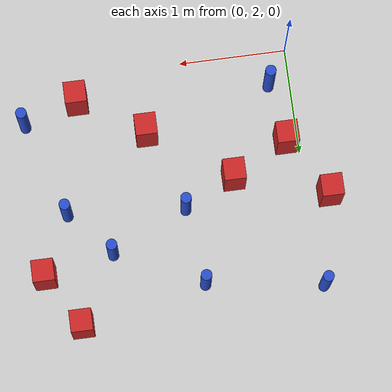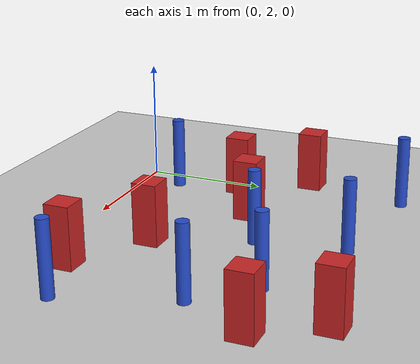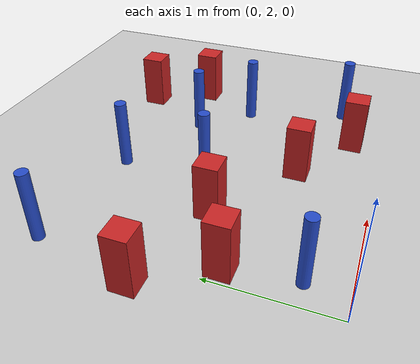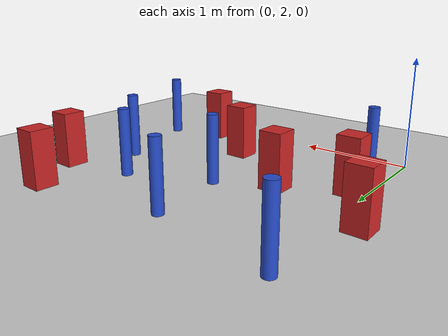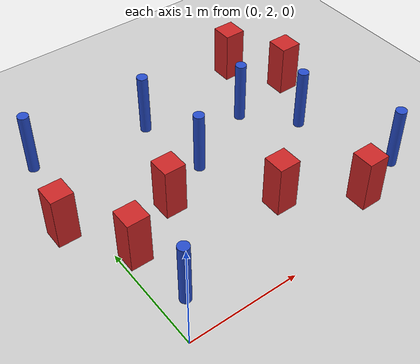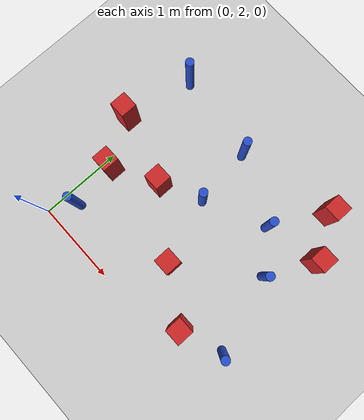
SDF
<sdf version="1.6">
 <world name="default">
  <model name="ground_plane">
   <static>1</static>
   <link name="link">
    <collision name="collision">
     <geometry><plane><normal>0 0 1</normal><size>100 100</size></plane></geometry>
     <surface><friction><ode><mu>100</mu><mu2>50</mu2></ode></friction></surface>
    </collision>
    <visual name="visual">
     <cast_shadows>0</cast_shadows>
     <geometry><plane><normal>0 0 1</normal><size>100 100</size></plane></geometry>
     <material>
      <ambient>1.0 1.0 1.0 1.0</ambient>
      <diffuse>0.8 0.8 0.8 1.0</diffuse>
      <specular>0.01 0.01 0.01 1.000000</specular>
     </material>
    </visual>
   </link>
  </model>
  <model name="pole_obstacle15">
   <static>true</static>
   <pose>1.03543532854 4.12226089961 2.88873142074e-08 -9.90536689905e-09 4.60219948988e-07 -1.20965994961e-07</pose>
   <link name="link">
    <pose>0 0 0.3 0 -0 0</pose>
    <inertial>
     <mass>1</mass>
     <inertia><ixx>0.145833</ixx><ixy>0</ixy><ixz>0</ixz><iyy>0.145833</iyy><iyz>0</iyz><izz>0.125</izz></inertia>
    </inertial>
    <collision name="collision">
     <geometry><cylinder><radius>0.05</radius><length>.6</length></cylinder></geometry>
    </collision>
    <visual name="visual">
     <geometry><cylinder><radius>0.05</radius><length>.6</length></cylinder></geometry>
     <material>
      <script><name>Gazebo/Blue</name><uri>file://media/materials/scripts/gazebo.material</uri></script>
     </material>
    </visual>
   </link>
  </model>
  <model name="pole_obstacle40">
   <static>true</static>
   <pose>1.1254228163 3.40366411227 2.88873142074e-08 -9.90536689791e-09 4.6021994899e-07 -1.20965994959e-07</pose>
   <link name="link">
    <pose>0 0 0.3 0 -0 0</pose>
    <inertial>
     <mass>1</mass>
     <inertia><ixx>0.145833</ixx><ixy>0</ixy><ixz>0</ixz><iyy>0.145833</iyy><iyz>0</iyz><izz>0.125</izz></inertia>
    </inertial>
    <collision name="collision">
     <geometry><cylinder><radius>0.05</radius><length>.6</length></cylinder></geometry>
    </collision>
    <visual name="visual">
     <geometry><cylinder><radius>0.05</radius><length>.6</length></cylinder></geometry>
     <material>
      <script><name>Gazebo/Blue</name><uri>file://media/materials/scripts/gazebo.material</uri></script>
     </material>
    </visual>
   </link>
  </model>
  <model name="square_post_obstacle45">
   <static>true</static>
   <pose>0.651753841996 3.17246568594 8.22691968438e-08 7.2212513382e-06 -7.54495500217e-07 2.29674213826e-05</pose>
   <link name="link">
    <pose>0 0 0.25 0 -0 0</pose>
    <inertial>
     <mass>100</mass>
     <inertia>
      <ixx>0.166667</ixx>
      <ixy>0</ixy>
      <ixz>0</ixz>
      <iyy>0.166667</iyy>
      <iyz>0</iyz>
      <izz>0.166667</izz>
     </inertia>
    </inertial>
    <collision name="collision"><geometry><box><size>.2 .2 .5</size></box></geometry></collision>
    <visual name="visual">
     <geometry><box><size>.2 .2 .5</size></box></geometry>
     <material>
      <script><name>Gazebo/Red</name><uri>file://media/materials/scripts/gazebo.material</uri></script>
     </material>
    </visual>
   </link>
  </model>
  <model name="pole_obstacle50">
   <static>true</static>
   <pose>2.2150086224 3.3212447633 2.88873142074e-08 -9.90536690232e-09 4.6021994898e-07 -1.20965994968e-07</pose>
   <link name="link">
    <pose>0 0 0.3 0 -0 0</pose>
    <inertial>
     <mass>1</mass>
     <inertia><ixx>0.145833</ixx><ixy>0</ixy><ixz>0</ixz><iyy>0.145833</iyy><iyz>0</iyz><izz>0.125</izz></inertia>
    </inertial>
    <collision name="collision">
     <geometry><cylinder><radius>0.05</radius><length>.6</length></cylinder></geometry>
    </collision>
    <visual name="visual">
     <geometry><cylinder><radius>0.05</radius><length>.6</length></cylinder></geometry>
     <material>
      <script><name>Gazebo/Blue</name><uri>file://media/materials/scripts/gazebo.material</uri></script>
     </material>
    </visual>
   </link>
  </model>
  <model name="square_post_obstacle54">
   <static>true</static>
   <pose>1.39793324621 2.6527842161 8.22691968438e-08 7.2212513382e-06 -7.54495500217e-07 2.29674213826e-05</pose>
   <link name="link">
    <pose>0 0 0.25 0 -0 0</pose>
    <inertial>
     <mass>100</mass>
     <inertia>
      <ixx>0.166667</ixx>
      <ixy>0</ixy>
      <ixz>0</ixz>
      <iyy>0.166667</iyy>
      <iyz>0</iyz>
      <izz>0.166667</izz>
     </inertia>
    </inertial>
    <collision name="collision"><geometry><box><size>.2 .2 .5</size></box></geometry></collision>
    <visual name="visual">
     <geometry><box><size>.2 .2 .5</size></box></geometry>
     <material>
      <script><name>Gazebo/Red</name><uri>file://media/materials/scripts/gazebo.material</uri></script>
     </material>
    </visual>
   </link>
  </model>
  <model name="square_post_obstacle64">
   <static>true</static>
   <pose>2.00207417969 2.27022836218 8.22691968438e-08 7.2212513382e-06 -7.54495500217e-07 2.29674213826e-05</pose>
   <link name="link">
    <pose>0 0 0.25 0 -0 0</pose>
    <inertial>
     <mass>100</mass>
     <inertia>
      <ixx>0.166667</ixx>
      <ixy>0</ixy>
      <ixz>0</ixz>
      <iyy>0.166667</iyy>
      <iyz>0</iyz>
      <izz>0.166667</izz>
     </inertia>
    </inertial>
    <collision name="collision"><geometry><box><size>.2 .2 .5</size></box></geometry></collision>
    <visual name="visual">
     <geometry><box><size>.2 .2 .5</size></box></geometry>
     <material>
      <script><name>Gazebo/Red</name><uri>file://media/materials/scripts/gazebo.material</uri></script>
     </material>
    </visual>
   </link>
  </model>
  <model name="pole_obstacle78">
   <static>true</static>
   <pose>0.203501877367 2.33106990192 2.88873142074e-08 -9.90536692545e-09 4.60219948925e-07 -1.2096599499e-07</pose>
   <link name="link">
    <pose>0 0 0.3 0 -0 0</pose>
    <inertial>
     <mass>1</mass>
     <inertia><ixx>0.145833</ixx><ixy>0</ixy><ixz>0</ixz><iyy>0.145833</iyy><iyz>0</iyz><izz>0.125</izz></inertia>
    </inertial>
    <collision name="collision">
     <geometry><cylinder><radius>0.05</radius><length>.6</length></cylinder></geometry>
    </collision>
    <visual name="visual">
     <geometry><cylinder><radius>0.05</radius><length>.6</length></cylinder></geometry>
     <material>
      <script><name>Gazebo/Blue</name><uri>file://media/materials/scripts/gazebo.material</uri></script>
     </material>
    </visual>
   </link>
  </model>
  <model name="square_post_obstacle123">
   <static>true</static>
   <pose>0.124385165504 2.88883878161 8.22691968438e-08 7.2212513382e-06 -7.54495500217e-07 2.29674213826e-05</pose>
   <link name="link">
    <pose>0 0 0.25 0 -0 0</pose>
    <inertial>
     <mass>100</mass>
     <inertia>
      <ixx>0.166667</ixx>
      <ixy>0</ixy>
      <ixz>0</ixz>
      <iyy>0.166667</iyy>
      <iyz>0</iyz>
      <izz>0.166667</izz>
     </inertia>
    </inertial>
    <collision name="collision"><geometry><box><size>.2 .2 .5</size></box></geometry></collision>
    <visual name="visual">
     <geometry><box><size>.2 .2 .5</size></box></geometry>
     <material>
      <script><name>Gazebo/Red</name><uri>file://media/materials/scripts/gazebo.material</uri></script>
     </material>
    </visual>
   </link>
  </model>
  <model name="pole_obstacle150">
   <static>true</static>
   <pose>-0.0423141037041 4.27244263458 2.88873142074e-08 -9.90536689643e-09 4.60219948994e-07 -1.20965994959e-07</pose>
   <link name="link">
    <pose>0 0 0.3 0 -0 0</pose>
    <inertial>
     <mass>1</mass>
     <inertia><ixx>0.145833</ixx><ixy>0</ixy><ixz>0</ixz><iyy>0.145833</iyy><iyz>0</iyz><izz>0.125</izz></inertia>
    </inertial>
    <collision name="collision">
     <geometry><cylinder><radius>0.05</radius><length>.6</length></cylinder></geometry>
    </collision>
    <visual name="visual">
     <geometry><cylinder><radius>0.05</radius><length>.6</length></cylinder></geometry>
     <material>
      <script><name>Gazebo/Blue</name><uri>file://media/materials/scripts/gazebo.material</uri></script>
     </material>
    </visual>
   </link>
  </model>
  <model name="pole_obstacle151">
   <static>true</static>
   <pose>2.50656428758 2.43183259265 2.88873142074e-08 -9.90536690232e-09 4.6021994898e-07 -1.20965994968e-07</pose>
   <link name="link">
    <pose>0 0 0.3 0 -0 0</pose>
    <inertial>
     <mass>1</mass>
     <inertia><ixx>0.145833</ixx><ixy>0</ixy><ixz>0</ixz><iyy>0.145833</iyy><iyz>0</iyz><izz>0.125</izz></inertia>
    </inertial>
    <collision name="collision">
     <geometry><cylinder><radius>0.05</radius><length>.6</length></cylinder></geometry>
    </collision>
    <visual name="visual">
     <geometry><cylinder><radius>0.05</radius><length>.6</length></cylinder></geometry>
     <material>
      <script><name>Gazebo/Blue</name><uri>file://media/materials/scripts/gazebo.material</uri></script>
     </material>
    </visual>
   </link>
  </model>
  <model name="pole_obstacle154">
   <static>true</static>
   <pose>1.84044727119 3.73817627601 2.88873142074e-08 -9.90536689791e-09 4.6021994899e-07 -1.20965994959e-07</pose>
   <link name="link">
    <pose>0 0 0.3 0 -0 0</pose>
    <inertial>
     <mass>1</mass>
     <inertia><ixx>0.145833</ixx><ixy>0</ixy><ixz>0</ixz><iyy>0.145833</iyy><iyz>0</iyz><izz>0.125</izz></inertia>
    </inertial>
    <collision name="collision">
     <geometry><cylinder><radius>0.05</radius><length>.6</length></cylinder></geometry>
    </collision>
    <visual name="visual">
     <geometry><cylinder><radius>0.05</radius><length>.6</length></cylinder></geometry>
     <material>
      <script><name>Gazebo/Blue</name><uri>file://media/materials/scripts/gazebo.material</uri></script>
     </material>
    </visual>
   </link>
  </model>
  <model name="square_post_obstacle153">
   <static>true</static>
   <pose>2.19668017657 4.3630407731 8.22691968438e-08 7.2212513382e-06 -7.54495500217e-07 2.29674213826e-05</pose>
   <link name="link">
    <pose>0 0 0.25 0 -0 0</pose>
    <inertial>
     <mass>100</mass>
     <inertia>
      <ixx>0.166667</ixx>
      <ixy>0</ixy>
      <ixz>0</ixz>
      <iyy>0.166667</iyy>
      <iyz>0</iyz>
      <izz>0.166667</izz>
     </inertia>
    </inertial>
    <collision name="collision"><geometry><box><size>.2 .2 .5</size></box></geometry></collision>
    <visual name="visual">
     <geometry><box><size>.2 .2 .5</size></box></geometry>
     <material>
      <script><name>Gazebo/Red</name><uri>file://media/materials/scripts/gazebo.material</uri></script>
     </material>
    </visual>
   </link>
  </model>
  <model name="square_post_obstacle184">
   <static>true</static>
   <pose>2.4825526089 3.8719069279 8.22691968438e-08 7.2212513382e-06 -7.54495500217e-07 2.29674213826e-05</pose>
   <link name="link">
    <pose>0 0 0.25 0 -0 0</pose>
    <inertial>
     <mass>100</mass>
     <inertia>
      <ixx>0.166667</ixx>
      <ixy>0</ixy>
      <ixz>0</ixz>
      <iyy>0.166667</iyy>
      <iyz>0</iyz>
      <izz>0.166667</izz>
     </inertia>
    </inertial>
    <collision name="collision"><geometry><box><size>.2 .2 .5</size></box></geometry></collision>
    <visual name="visual">
     <geometry><box><size>.2 .2 .5</size></box></geometry>
     <material>
      <script><name>Gazebo/Red</name><uri>file://media/materials/scripts/gazebo.material</uri></script>
     </material>
    </visual>
   </link>
  </model>
  <model name="square_post_obstacle193">
   <static>true</static>
   <pose>-0.206575776411 3.43270791852 8.22691968438e-08 7.2212513382e-06 -7.54495500217e-07 2.29674213826e-05</pose>
   <link name="link">
    <pose>0 0 0.25 0 -0 0</pose>
    <inertial>
     <mass>100</mass>
     <inertia>
      <ixx>0.166667</ixx>
      <ixy>0</ixy>
      <ixz>0</ixz>
      <iyy>0.166667</iyy>
      <iyz>0</iyz>
      <izz>0.166667</izz>
     </inertia>
    </inertial>
    <collision name="collision"><geometry><box><size>.2 .2 .5</size></box></geometry></collision>
    <visual name="visual">
     <geometry><box><size>.2 .2 .5</size></box></geometry>
     <material>
      <script><name>Gazebo/Red</name><uri>file://media/materials/scripts/gazebo.material</uri></script>
     </material>
    </visual>
   </link>
  </model>
 </world>
</sdf>
